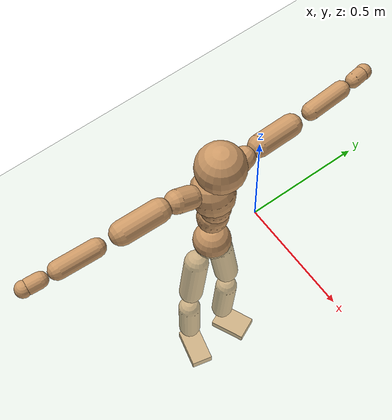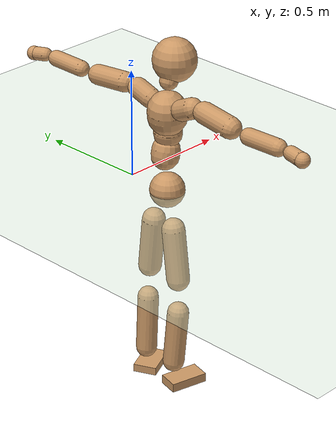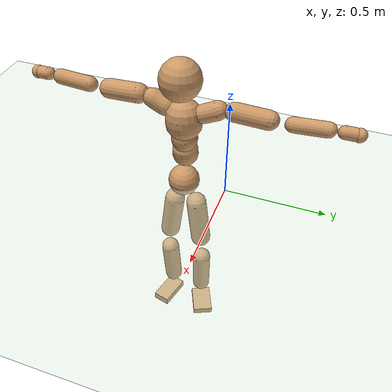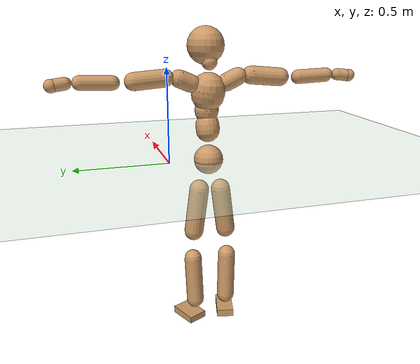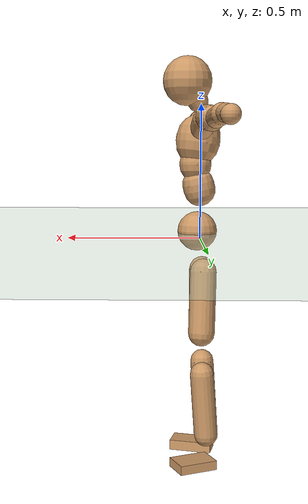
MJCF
<mujoco model="humanoid">
  <compiler coordinate="local" angle="radian"/>
  <default>
    <joint damping="0.0" armature="0.01" stiffness="0.0" limited="true"/>
    <geom conaffinity="1" condim="3" contype="7" margin="0.001" rgba="0.8 0.6 .4 1"/>
  </default>
  <asset>
    <texture type="skybox" builtin="gradient" rgb1=".4 .5 .6" rgb2="0 0 0" width="100" height="100"/>
    <texture builtin="flat" height="1278" mark="cross" markrgb="1 1 1" name="texgeom" random="0.01" rgb1="0.8 0.6 0.4" rgb2="0.8 0.6 0.4" type="cube" width="127"/>
    <texture builtin="checker" height="100" name="texplane" rgb1="0 0 0" rgb2="0.8 0.8 0.8" type="2d" width="100"/>
    <material name="MatPlane" reflectance="0.5" shininess="1" specular="1" texrepeat="60 60" texture="texplane"/>
    <material name="geom" texture="texgeom" texuniform="true"/>
  </asset>
  <worldbody>
    <light cutoff="100" diffuse="1 1 1" dir="-0 0 -1.3" directional="true" exponent="1" pos="0 0 1.3" specular=".1 .1 .1"/>
    <geom conaffinity="1" condim="3" name="floor" pos="0 0 0" rgba="0.8 0.9 0.8 1" size="100 100 .2" type="plane" material="MatPlane"/>
    <body name="Pelvis" pos="-0.0001 -0.2173 0.0065">
      <freejoint name="Pelvis"/>
      <geom type="sphere" contype="1" conaffinity="1" density="500" size="0.0792" pos="0.0000 0.0000 0.0000" name="Pelvis"/>
      <body name="L_Hip" pos="-0.0255 0.0492 -0.077">
        <joint name="L_Hip_x" type="hinge" pos="0 0 0" axis="1 0 0" stiffness="800" damping="80" armature="0.02" range="-180.0000 180.0000"/>
        <joint name="L_Hip_y" type="hinge" pos="0 0 0" axis="0 1 0" stiffness="800" damping="80" armature="0.02" range="-180.0000 180.0000"/>
        <joint name="L_Hip_z" type="hinge" pos="0 0 0" axis="0 0 1" stiffness="800" damping="80" armature="0.02" range="-180.0000 180.0000"/>
        <geom type="capsule" contype="1" conaffinity="1" density="500" fromto="0.0022 0.0104 -0.0818 0.0086 0.0415 -0.3274" size="0.0527" name="L_Hip"/>
        <body name="L_Knee" pos="0.0108 0.0518 -0.4092">
          <joint name="L_Knee_x" type="hinge" pos="0 0 0" axis="1 0 0" stiffness="800" damping="80" armature="0.02" range="-180.0000 180.0000"/>
          <joint name="L_Knee_y" type="hinge" pos="0 0 0" axis="0 1 0" stiffness="800" damping="80" armature="0.02" range="-180.0000 180.0000"/>
          <joint name="L_Knee_z" type="hinge" pos="0 0 0" axis="0 0 1" stiffness="800" damping="80" armature="0.02" range="-180.0000 180.0000"/>
          <geom type="capsule" contype="1" conaffinity="1" density="500" fromto="-0.0062 -0.0021 -0.0852 -0.0249 -0.0085 -0.3410" size="0.0479" name="L_Knee"/>
          <body name="L_Ankle" pos="-0.0312 -0.0107 -0.4262">
            <joint name="L_Ankle_x" type="hinge" pos="0 0 0" axis="1 0 0" stiffness="800" damping="80" armature="0.02" range="-180.0000 180.0000"/>
            <joint name="L_Ankle_y" type="hinge" pos="0 0 0" axis="0 1 0" stiffness="800" damping="80" armature="0.02" range="-180.0000 180.0000"/>
            <joint name="L_Ankle_z" type="hinge" pos="0 0 0" axis="0 0 1" stiffness="800" damping="80" armature="0.02" range="-180.0000 180.0000"/>
            <geom type="box" contype="1" conaffinity="1" density="500" pos="0.0576 0.0260 -0.0303" size="0.0799 0.0538 0.0187" quat="0.9776 0.0000 0.0000 0.2105" name="L_Ankle"/>
            <body name="L_Toe" pos="0.1153 0.0521 -0.0605">
              <joint name="L_Toe_x" type="hinge" pos="0 0 0" axis="1 0 0" stiffness="500" damping="50" armature="0.02" range="-180.0000 180.0000"/>
              <joint name="L_Toe_y" type="hinge" pos="0 0 0" axis="0 1 0" stiffness="500" damping="50" armature="0.02" range="-180.0000 180.0000"/>
              <joint name="L_Toe_z" type="hinge" pos="0 0 0" axis="0 0 1" stiffness="500" damping="50" armature="0.02" range="-180.0000 180.0000"/>
              <geom type="box" contype="1" conaffinity="1" density="500" pos="0.0000 0.0000 0.0334" size="0.001 0.0025 0.0011" quat="0.9768 0.0000 0.0000 0.2143" name="L_Toe"/>
            </body>
          </body>
        </body>
      </body>
      <body name="R_Hip" pos="-0.0241 -0.0508 -0.0845">
        <joint name="R_Hip_x" type="hinge" pos="0 0 0" axis="1 0 0" stiffness="800" damping="80" armature="0.02" range="-180.0000 180.0000"/>
        <joint name="R_Hip_y" type="hinge" pos="0 0 0" axis="0 1 0" stiffness="800" damping="80" armature="0.02" range="-180.0000 180.0000"/>
        <joint name="R_Hip_z" type="hinge" pos="0 0 0" axis="0 0 1" stiffness="800" damping="80" armature="0.02" range="-180.0000 180.0000"/>
        <geom type="capsule" contype="1" conaffinity="1" density="500" fromto="-0.0003 -0.0103 -0.0799 -0.0011 -0.0411 -0.3197" size="0.0519" name="R_Hip"/>
        <body name="R_Knee" pos="-0.0013 -0.0513 -0.3997">
          <joint name="R_Knee_x" type="hinge" pos="0 0 0" axis="1 0 0" stiffness="800" damping="80" armature="0.02" range="-180.0000 180.0000"/>
          <joint name="R_Knee_y" type="hinge" pos="0 0 0" axis="0 1 0" stiffness="800" damping="80" armature="0.02" range="-180.0000 180.0000"/>
          <joint name="R_Knee_z" type="hinge" pos="0 0 0" axis="0 0 1" stiffness="800" damping="80" armature="0.02" range="-180.0000 180.0000"/>
          <geom type="capsule" contype="1" conaffinity="1" density="500" fromto="-0.0057 0.0034 -0.0839 -0.0227 0.0136 -0.3356" size="0.0488" name="R_Knee"/>
          <body name="R_Ankle" pos="-0.0283 0.017 -0.4195">
            <joint name="R_Ankle_x" type="hinge" pos="0 0 0" axis="1 0 0" stiffness="800" damping="80" armature="0.02" range="-180.0000 180.0000"/>
            <joint name="R_Ankle_y" type="hinge" pos="0 0 0" axis="0 1 0" stiffness="800" damping="80" armature="0.02" range="-180.0000 180.0000"/>
            <joint name="R_Ankle_z" type="hinge" pos="0 0 0" axis="0 0 1" stiffness="800" damping="80" armature="0.02" range="-180.0000 180.0000"/>
            <geom type="box" contype="1" conaffinity="1" density="500" pos="0.0621 -0.0149 -0.0325" size="0.0873 0.0467 0.021" quat="0.9931 0.0000 0.0000 -0.1177" name="R_Ankle"/>
            <body name="R_Toe" pos="0.1242 -0.0299 -0.065">
              <joint name="R_Toe_x" type="hinge" pos="0 0 0" axis="1 0 0" stiffness="500" damping="50" armature="0.02" range="-180.0000 180.0000"/>
              <joint name="R_Toe_y" type="hinge" pos="0 0 0" axis="0 1 0" stiffness="500" damping="50" armature="0.02" range="-180.0000 180.0000"/>
              <joint name="R_Toe_z" type="hinge" pos="0 0 0" axis="0 0 1" stiffness="500" damping="50" armature="0.02" range="-180.0000 180.0000"/>
              <geom type="box" contype="1" conaffinity="1" density="500" pos="0.0000 0.0000 0.0344" size="0.0009 0.0023 0.0011" quat="0.9941 0.0000 0.0000 -0.1084" name="R_Toe"/>
            </body>
          </body>
        </body>
      </body>
      <body name="Torso" pos="-0.0201 0.0041 0.1118">
        <joint name="Torso_x" type="hinge" pos="0 0 0" axis="1 0 0" stiffness="1000" damping="100" armature="0.02" range="-180.0000 180.0000"/>
        <joint name="Torso_y" type="hinge" pos="0 0 0" axis="0 1 0" stiffness="1000" damping="100" armature="0.02" range="-180.0000 180.0000"/>
        <joint name="Torso_z" type="hinge" pos="0 0 0" axis="0 0 1" stiffness="1000" damping="100" armature="0.02" range="-180.0000 180.0000"/>
        <geom type="capsule" contype="1" conaffinity="1" density="500" fromto="0.0185 0.0022 0.0790 0.0123 0.0015 0.0527" size="0.0632" name="Torso"/>
        <body name="Spine" pos="0.0308 0.0037 0.1317">
          <joint name="Spine_x" type="hinge" pos="0 0 0" axis="1 0 0" stiffness="1000" damping="100" armature="0.02" range="-180.0000 180.0000"/>
          <joint name="Spine_y" type="hinge" pos="0 0 0" axis="0 1 0" stiffness="1000" damping="100" armature="0.02" range="-180.0000 180.0000"/>
          <joint name="Spine_z" type="hinge" pos="0 0 0" axis="0 0 1" stiffness="1000" damping="100" armature="0.02" range="-180.0000 180.0000"/>
          <geom type="capsule" contype="1" conaffinity="1" density="500" fromto="-0.0007 -0.0013 0.0316 -0.0005 -0.0009 0.0210" size="0.0637" name="Spine"/>
          <body name="Chest" pos="-0.0012 -0.0021 0.0526">
            <joint name="Chest_x" type="hinge" pos="0 0 0" axis="1 0 0" stiffness="1000" damping="100" armature="0.02" range="-180.0000 180.0000"/>
            <joint name="Chest_y" type="hinge" pos="0 0 0" axis="0 1 0" stiffness="1000" damping="100" armature="0.02" range="-180.0000 180.0000"/>
            <joint name="Chest_z" type="hinge" pos="0 0 0" axis="0 0 1" stiffness="1000" damping="100" armature="0.02" range="-180.0000 180.0000"/>
            <geom type="capsule" contype="1" conaffinity="1" density="500" fromto="-0.0111 -0.0055 0.0819 -0.0074 -0.0036 0.0546" size="0.088" name="Chest"/>
            <body name="Neck" pos="-0.0185 -0.0136 0.1994">
              <joint name="Neck_x" type="hinge" pos="0 0 0" axis="1 0 0" stiffness="500" damping="50" armature="0.02" range="-180.0000 180.0000"/>
              <joint name="Neck_y" type="hinge" pos="0 0 0" axis="0 1 0" stiffness="500" damping="50" armature="0.02" range="-180.0000 180.0000"/>
              <joint name="Neck_z" type="hinge" pos="0 0 0" axis="0 0 1" stiffness="500" damping="50" armature="0.02" range="-180.0000 180.0000"/>
              <geom type="capsule" contype="1" conaffinity="1" density="500" fromto="0.0106 0.0019 0.0201 0.0425 0.0075 0.0805" size="0.0411" name="Neck"/>
              <body name="Head" pos="0.0532 0.0094 0.1006">
                <joint name="Head_x" type="hinge" pos="0 0 0" axis="1 0 0" stiffness="500" damping="50" armature="0.02" range="-180.0000 180.0000"/>
                <joint name="Head_y" type="hinge" pos="0 0 0" axis="0 1 0" stiffness="500" damping="50" armature="0.02" range="-180.0000 180.0000"/>
                <joint name="Head_z" type="hinge" pos="0 0 0" axis="0 0 1" stiffness="500" damping="50" armature="0.02" range="-180.0000 180.0000"/>
                <geom type="sphere" contype="1" conaffinity="1" density="500" size="0.0977" pos="0.0000 0.0000 0.0000" name="Head"/>
              </body>
            </body>
            <body name="L_Thorax" pos="-0.0172 0.065 0.1049">
              <joint name="L_Thorax_x" type="hinge" pos="0 0 0" axis="1 0 0" stiffness="500" damping="50" armature="0.02" range="-180.0000 180.0000"/>
              <joint name="L_Thorax_y" type="hinge" pos="0 0 0" axis="0 1 0" stiffness="500" damping="50" armature="0.02" range="-180.0000 180.0000"/>
              <joint name="L_Thorax_z" type="hinge" pos="0 0 0" axis="0 0 1" stiffness="500" damping="50" armature="0.02" range="-180.0000 180.0000"/>
              <geom type="capsule" contype="1" conaffinity="1" density="500" fromto="-0.0023 0.0220 0.0094 -0.0093 0.0878 0.0378" size="0.0457" name="L_Thorax"/>
              <body name="L_Shoulder" pos="-0.0116 0.1098 0.0472">
                <joint name="L_Shoulder_x" type="hinge" pos="0 0 0" axis="1 0 0" stiffness="500" damping="50" armature="0.02" range="-720.0000 720.0000"/>
                <joint name="L_Shoulder_y" type="hinge" pos="0 0 0" axis="0 1 0" stiffness="500" damping="50" armature="0.02" range="-720.0000 720.0000"/>
                <joint name="L_Shoulder_z" type="hinge" pos="0 0 0" axis="0 0 1" stiffness="500" damping="50" armature="0.02" range="-720.0000 720.0000"/>
                <geom type="capsule" contype="1" conaffinity="1" density="500" fromto="-0.0027 0.0523 -0.0037 -0.0109 0.2092 -0.0148" size="0.0456" name="L_Shoulder"/>
                <body name="L_Elbow" pos="-0.0137 0.2615 -0.0185">
                  <joint name="L_Elbow_x" type="hinge" pos="0 0 0" axis="1 0 0" stiffness="500" damping="50" armature="0.02" range="-720.0000 720.0000"/>
                  <joint name="L_Elbow_y" type="hinge" pos="0 0 0" axis="0 1 0" stiffness="500" damping="50" armature="0.02" range="-720.0000 720.0000"/>
                  <joint name="L_Elbow_z" type="hinge" pos="0 0 0" axis="0 0 1" stiffness="500" damping="50" armature="0.02" range="-720.0000 720.0000"/>
                  <geom type="capsule" contype="1" conaffinity="1" density="500" fromto="-0.0023 0.0510 0.0019 -0.0094 0.2040 0.0076" size="0.0361" name="L_Elbow"/>
                  <body name="L_Wrist" pos="-0.0117 0.2551 0.0095">
                    <joint name="L_Wrist_x" type="hinge" pos="0 0 0" axis="1 0 0" stiffness="300" damping="30" armature="0.02" range="-180.0000 180.0000"/>
                    <joint name="L_Wrist_y" type="hinge" pos="0 0 0" axis="0 1 0" stiffness="300" damping="30" armature="0.02" range="-180.0000 180.0000"/>
                    <joint name="L_Wrist_z" type="hinge" pos="0 0 0" axis="0 0 1" stiffness="300" damping="30" armature="0.02" range="-180.0000 180.0000"/>
                    <geom type="capsule" contype="1" conaffinity="1" density="500" fromto="-0.0029 0.0158 -0.0019 -0.0116 0.0631 -0.0076" size="0.0306" name="L_Wrist"/>
                    <body name="L_Hand" pos="-0.0144 0.0789 -0.0095">
                      <joint name="L_Hand_x" type="hinge" pos="0 0 0" axis="1 0 0" stiffness="300" damping="30" armature="0.02" range="-180.0000 180.0000"/>
                      <joint name="L_Hand_y" type="hinge" pos="0 0 0" axis="0 1 0" stiffness="300" damping="30" armature="0.02" range="-180.0000 180.0000"/>
                      <joint name="L_Hand_z" type="hinge" pos="0 0 0" axis="0 0 1" stiffness="300" damping="30" armature="0.02" range="-180.0000 180.0000"/>
                      <geom type="sphere" contype="1" conaffinity="1" density="500" size="0.0323" pos="0.0000 0.0000 0.0000" name="L_Hand"/>
                    </body>
                  </body>
                </body>
              </body>
            </body>
            <body name="R_Thorax" pos="-0.0199 -0.0786 0.1051">
              <joint name="R_Thorax_x" type="hinge" pos="0 0 0" axis="1 0 0" stiffness="500" damping="50" armature="0.02" range="-180.0000 180.0000"/>
              <joint name="R_Thorax_y" type="hinge" pos="0 0 0" axis="0 1 0" stiffness="500" damping="50" armature="0.02" range="-180.0000 180.0000"/>
              <joint name="R_Thorax_z" type="hinge" pos="0 0 0" axis="0 0 1" stiffness="500" damping="50" armature="0.02" range="-180.0000 180.0000"/>
              <geom type="capsule" contype="1" conaffinity="1" density="500" fromto="-0.0005 -0.0206 0.0098 -0.0021 -0.0826 0.0391" size="0.0469" name="R_Thorax"/>
              <body name="R_Shoulder" pos="-0.0027 -0.1032 0.0489">
                <joint name="R_Shoulder_x" type="hinge" pos="0 0 0" axis="1 0 0" stiffness="500" damping="50" armature="0.02" range="-720.0000 720.0000"/>
                <joint name="R_Shoulder_y" type="hinge" pos="0 0 0" axis="0 1 0" stiffness="500" damping="50" armature="0.02" range="-720.0000 720.0000"/>
                <joint name="R_Shoulder_z" type="hinge" pos="0 0 0" axis="0 0 1" stiffness="500" damping="50" armature="0.02" range="-720.0000 720.0000"/>
                <geom type="capsule" contype="1" conaffinity="1" density="500" fromto="-0.0037 -0.0524 -0.0045 -0.0149 -0.2096 -0.0180" size="0.048" name="R_Shoulder"/>
                <body name="R_Elbow" pos="-0.0187 -0.262 -0.0225">
                  <joint name="R_Elbow_x" type="hinge" pos="0 0 0" axis="1 0 0" stiffness="500" damping="50" armature="0.02" range="-720.0000 720.0000"/>
                  <joint name="R_Elbow_y" type="hinge" pos="0 0 0" axis="0 1 0" stiffness="500" damping="50" armature="0.02" range="-720.0000 720.0000"/>
                  <joint name="R_Elbow_z" type="hinge" pos="0 0 0" axis="0 0 1" stiffness="500" damping="50" armature="0.02" range="-720.0000 720.0000"/>
                  <geom type="capsule" contype="1" conaffinity="1" density="500" fromto="-0.0015 -0.0533 0.0022 -0.0059 -0.2133 0.0089" size="0.0374" name="R_Elbow"/>
                  <body name="R_Wrist" pos="-0.0074 -0.2666 0.0111">
                    <joint name="R_Wrist_x" type="hinge" pos="0 0 0" axis="1 0 0" stiffness="300" damping="30" armature="0.02" range="-180.0000 180.0000"/>
                    <joint name="R_Wrist_y" type="hinge" pos="0 0 0" axis="0 1 0" stiffness="300" damping="30" armature="0.02" range="-180.0000 180.0000"/>
                    <joint name="R_Wrist_z" type="hinge" pos="0 0 0" axis="0 0 1" stiffness="300" damping="30" armature="0.02" range="-180.0000 180.0000"/>
                    <geom type="capsule" contype="1" conaffinity="1" density="500" fromto="-0.0019 -0.0164 -0.0015 -0.0077 -0.0654 -0.0060" size="0.0315" name="R_Wrist"/>
                    <body name="R_Hand" pos="-0.0097 -0.0818 -0.0076">
                      <joint name="R_Hand_x" type="hinge" pos="0 0 0" axis="1 0 0" stiffness="300" damping="30" armature="0.02" range="-180.0000 180.0000"/>
                      <joint name="R_Hand_y" type="hinge" pos="0 0 0" axis="0 1 0" stiffness="300" damping="30" armature="0.02" range="-180.0000 180.0000"/>
                      <joint name="R_Hand_z" type="hinge" pos="0 0 0" axis="0 0 1" stiffness="300" damping="30" armature="0.02" range="-180.0000 180.0000"/>
                      <geom type="sphere" contype="1" conaffinity="1" density="500" size="0.0331" pos="0.0000 0.0000 0.0000" name="R_Hand"/>
                    </body>
                  </body>
                </body>
              </body>
            </body>
          </body>
        </body>
      </body>
    </body>
  </worldbody>
  <actuator>
    <motor name="L_Hip_x" joint="L_Hip_x" gear="500"/>
    <motor name="L_Hip_y" joint="L_Hip_y" gear="500"/>
    <motor name="L_Hip_z" joint="L_Hip_z" gear="500"/>
    <motor name="L_Knee_x" joint="L_Knee_x" gear="500"/>
    <motor name="L_Knee_y" joint="L_Knee_y" gear="500"/>
    <motor name="L_Knee_z" joint="L_Knee_z" gear="500"/>
    <motor name="L_Ankle_x" joint="L_Ankle_x" gear="500"/>
    <motor name="L_Ankle_y" joint="L_Ankle_y" gear="500"/>
    <motor name="L_Ankle_z" joint="L_Ankle_z" gear="500"/>
    <motor name="L_Toe_x" joint="L_Toe_x" gear="500"/>
    <motor name="L_Toe_y" joint="L_Toe_y" gear="500"/>
    <motor name="L_Toe_z" joint="L_Toe_z" gear="500"/>
    <motor name="R_Hip_x" joint="R_Hip_x" gear="500"/>
    <motor name="R_Hip_y" joint="R_Hip_y" gear="500"/>
    <motor name="R_Hip_z" joint="R_Hip_z" gear="500"/>
    <motor name="R_Knee_x" joint="R_Knee_x" gear="500"/>
    <motor name="R_Knee_y" joint="R_Knee_y" gear="500"/>
    <motor name="R_Knee_z" joint="R_Knee_z" gear="500"/>
    <motor name="R_Ankle_x" joint="R_Ankle_x" gear="500"/>
    <motor name="R_Ankle_y" joint="R_Ankle_y" gear="500"/>
    <motor name="R_Ankle_z" joint="R_Ankle_z" gear="500"/>
    <motor name="R_Toe_x" joint="R_Toe_x" gear="500"/>
    <motor name="R_Toe_y" joint="R_Toe_y" gear="500"/>
    <motor name="R_Toe_z" joint="R_Toe_z" gear="500"/>
    <motor name="Torso_x" joint="Torso_x" gear="500"/>
    <motor name="Torso_y" joint="Torso_y" gear="500"/>
    <motor name="Torso_z" joint="Torso_z" gear="500"/>
    <motor name="Spine_x" joint="Spine_x" gear="500"/>
    <motor name="Spine_y" joint="Spine_y" gear="500"/>
    <motor name="Spine_z" joint="Spine_z" gear="500"/>
    <motor name="Chest_x" joint="Chest_x" gear="500"/>
    <motor name="Chest_y" joint="Chest_y" gear="500"/>
    <motor name="Chest_z" joint="Chest_z" gear="500"/>
    <motor name="Neck_x" joint="Neck_x" gear="500"/>
    <motor name="Neck_y" joint="Neck_y" gear="500"/>
    <motor name="Neck_z" joint="Neck_z" gear="500"/>
    <motor name="Head_x" joint="Head_x" gear="500"/>
    <motor name="Head_y" joint="Head_y" gear="500"/>
    <motor name="Head_z" joint="Head_z" gear="500"/>
    <motor name="L_Thorax_x" joint="L_Thorax_x" gear="500"/>
    <motor name="L_Thorax_y" joint="L_Thorax_y" gear="500"/>
    <motor name="L_Thorax_z" joint="L_Thorax_z" gear="500"/>
    <motor name="L_Shoulder_x" joint="L_Shoulder_x" gear="500"/>
    <motor name="L_Shoulder_y" joint="L_Shoulder_y" gear="500"/>
    <motor name="L_Shoulder_z" joint="L_Shoulder_z" gear="500"/>
    <motor name="L_Elbow_x" joint="L_Elbow_x" gear="500"/>
    <motor name="L_Elbow_y" joint="L_Elbow_y" gear="500"/>
    <motor name="L_Elbow_z" joint="L_Elbow_z" gear="500"/>
    <motor name="L_Wrist_x" joint="L_Wrist_x" gear="500"/>
    <motor name="L_Wrist_y" joint="L_Wrist_y" gear="500"/>
    <motor name="L_Wrist_z" joint="L_Wrist_z" gear="500"/>
    <motor name="L_Hand_x" joint="L_Hand_x" gear="500"/>
    <motor name="L_Hand_y" joint="L_Hand_y" gear="500"/>
    <motor name="L_Hand_z" joint="L_Hand_z" gear="500"/>
    <motor name="R_Thorax_x" joint="R_Thorax_x" gear="500"/>
    <motor name="R_Thorax_y" joint="R_Thorax_y" gear="500"/>
    <motor name="R_Thorax_z" joint="R_Thorax_z" gear="500"/>
    <motor name="R_Shoulder_x" joint="R_Shoulder_x" gear="500"/>
    <motor name="R_Shoulder_y" joint="R_Shoulder_y" gear="500"/>
    <motor name="R_Shoulder_z" joint="R_Shoulder_z" gear="500"/>
    <motor name="R_Elbow_x" joint="R_Elbow_x" gear="500"/>
    <motor name="R_Elbow_y" joint="R_Elbow_y" gear="500"/>
    <motor name="R_Elbow_z" joint="R_Elbow_z" gear="500"/>
    <motor name="R_Wrist_x" joint="R_Wrist_x" gear="500"/>
    <motor name="R_Wrist_y" joint="R_Wrist_y" gear="500"/>
    <motor name="R_Wrist_z" joint="R_Wrist_z" gear="500"/>
    <motor name="R_Hand_x" joint="R_Hand_x" gear="500"/>
    <motor name="R_Hand_y" joint="R_Hand_y" gear="500"/>
    <motor name="R_Hand_z" joint="R_Hand_z" gear="500"/>
  </actuator>
  <contact>
    <exclude body1="Torso" body2="Chest"/>
    <exclude body1="Head" body2="Chest"/>
    <exclude body1="R_Knee" body2="R_Toe"/>
    <exclude body1="R_Knee" body2="L_Ankle"/>
    <exclude body1="R_Knee" body2="L_Toe"/>
    <exclude body1="L_Knee" body2="L_Toe"/>
    <exclude body1="L_Knee" body2="R_Ankle"/>
    <exclude body1="L_Knee" body2="R_Toe"/>
    <exclude body1="L_Shoulder" body2="Chest"/>
    <exclude body1="R_Shoulder" body2="Chest"/>
  </contact>
  <sensor/>
  <size njmax="700" nconmax="700"/>
</mujoco>
